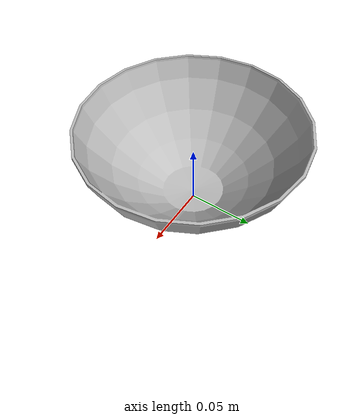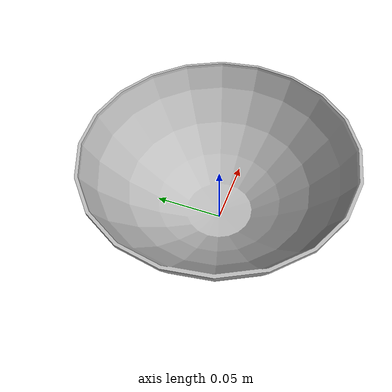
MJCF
<mujoco model="plastic_bowl">
  <compiler angle="radian"/>

  <asset>
    <material name="plastic_bowl_mat" rgba="0.74 0.74 0.74 1.0" specular="0.5" shininess="0.5"/>
    <mesh name="plastic_bowl_visual" file="plastic_bowl_visual.obj" scale="1 1 1"/>
  </asset>

  <worldbody>
    <body name="plastic_bowl" pos="0 0 0">
      <freejoint name="plastic_bowl_joint"/>

      <!-- Collision geometry - hollow bowl (floor + 8 angled wall segments) -->
      <!-- Floor - thin cylinder -->
      <geom name="plastic_bowl_floor"
            type="cylinder"
            pos="0 0 0.003"
            size="0.045 0.003"
            mass="0.05"
            friction="0.6 0.005 0.0001"
            contype="1"
            conaffinity="1"
            rgba="0 0 0 0"/>

      <!-- Wall segments (octagon, tilted outward ~30 deg to match bowl curve) -->
      <!-- Positioned at mid-radius 0.06, tilted 0.52 rad outward -->
      <!-- Segment at 0 degrees -->
      <geom name="plastic_bowl_wall_0" type="box"
            pos="0.062 0 0.04" euler="0.52 0 0"
            size="0.006 0.033 0.038" mass="0.0125"
            friction="0.6 0.005 0.0001" contype="1" conaffinity="1" rgba="0 0 0 0"/>
      <!-- Segment at 45 degrees -->
      <geom name="plastic_bowl_wall_45" type="box"
            pos="0.0438 0.0438 0.04" euler="0.368 0.368 0.785"
            size="0.006 0.033 0.038" mass="0.0125"
            friction="0.6 0.005 0.0001" contype="1" conaffinity="1" rgba="0 0 0 0"/>
      <!-- Segment at 90 degrees -->
      <geom name="plastic_bowl_wall_90" type="box"
            pos="0 0.062 0.04" euler="0 0.52 1.571"
            size="0.006 0.033 0.038" mass="0.0125"
            friction="0.6 0.005 0.0001" contype="1" conaffinity="1" rgba="0 0 0 0"/>
      <!-- Segment at 135 degrees -->
      <geom name="plastic_bowl_wall_135" type="box"
            pos="-0.0438 0.0438 0.04" euler="-0.368 0.368 2.356"
            size="0.006 0.033 0.038" mass="0.0125"
            friction="0.6 0.005 0.0001" contype="1" conaffinity="1" rgba="0 0 0 0"/>
      <!-- Segment at 180 degrees -->
      <geom name="plastic_bowl_wall_180" type="box"
            pos="-0.062 0 0.04" euler="-0.52 0 3.142"
            size="0.006 0.033 0.038" mass="0.0125"
            friction="0.6 0.005 0.0001" contype="1" conaffinity="1" rgba="0 0 0 0"/>
      <!-- Segment at 225 degrees -->
      <geom name="plastic_bowl_wall_225" type="box"
            pos="-0.0438 -0.0438 0.04" euler="-0.368 -0.368 3.927"
            size="0.006 0.033 0.038" mass="0.0125"
            friction="0.6 0.005 0.0001" contype="1" conaffinity="1" rgba="0 0 0 0"/>
      <!-- Segment at 270 degrees -->
      <geom name="plastic_bowl_wall_270" type="box"
            pos="0 -0.062 0.04" euler="0 -0.52 4.712"
            size="0.006 0.033 0.038" mass="0.0125"
            friction="0.6 0.005 0.0001" contype="1" conaffinity="1" rgba="0 0 0 0"/>
      <!-- Segment at 315 degrees -->
      <geom name="plastic_bowl_wall_315" type="box"
            pos="0.0438 -0.0438 0.04" euler="0.368 -0.368 5.498"
            size="0.006 0.033 0.038" mass="0.0125"
            friction="0.6 0.005 0.0001" contype="1" conaffinity="1" rgba="0 0 0 0"/>

      <!-- Visual mesh -->
      <geom name="plastic_bowl_visual"
            type="mesh"
            mesh="plastic_bowl_visual"
            material="plastic_bowl_mat"
            contype="0"
            conaffinity="0"/>
    </body>
  </worldbody>
</mujoco>
